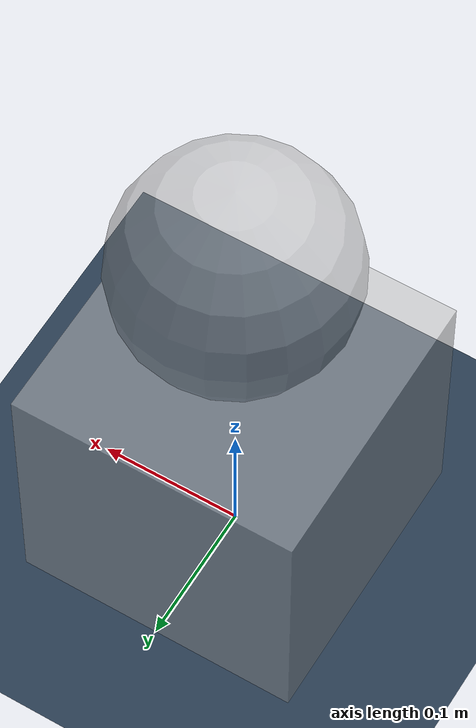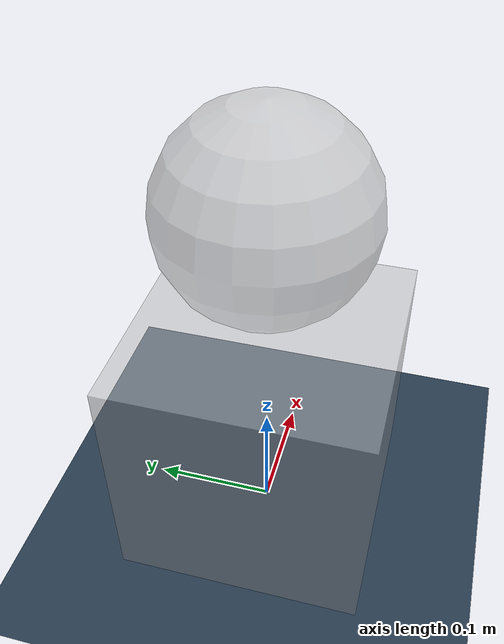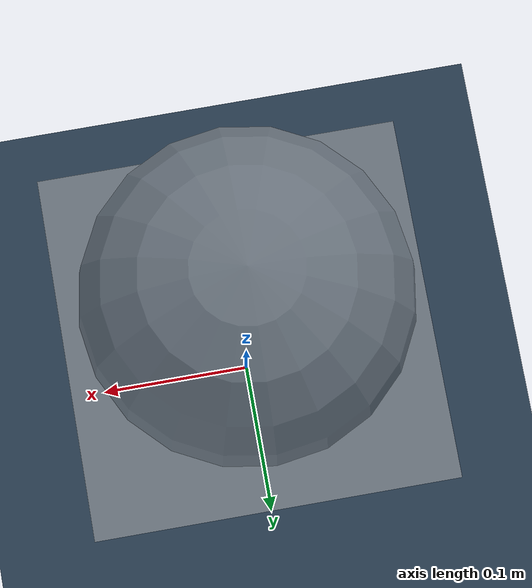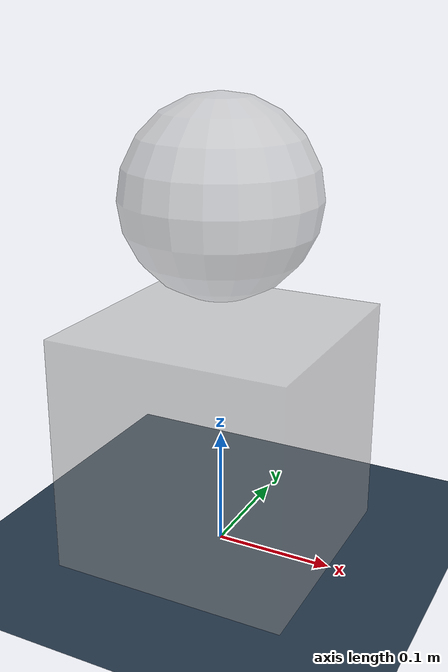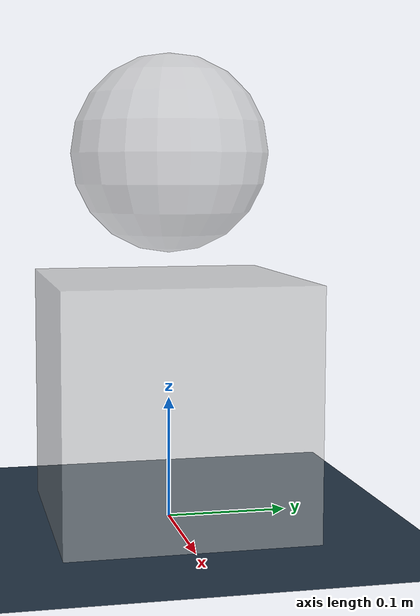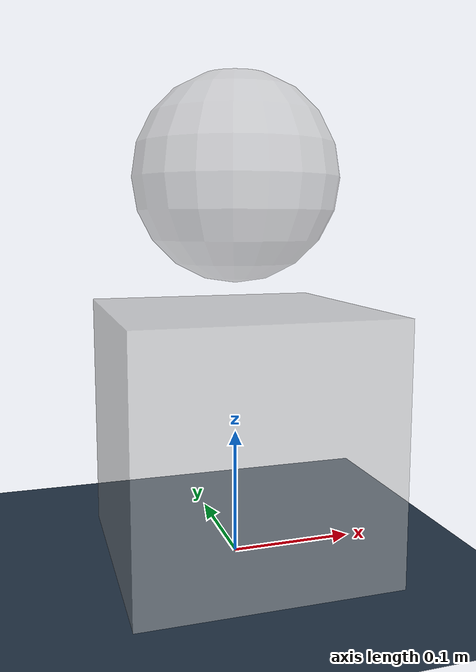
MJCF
<mujoco model="sphere_on_box">
  <compiler meshdir="asset" texturedir="asset"/>
  <statistic extent="1.5" meansize=".05"/>
  <option timestep="0.001" jacobian="sparse" gravity="0 0 -9.81"/>
  <size nconmax="3000" njmax="4000"/>
  <visual>
    <rgba haze="0.15 0.25 0.35 1"/>
    <quality shadowsize="4096"/>
    <map stiffness="700" shadowscale="0.5" fogstart="10" fogend="15" zfar="40" haze="0.3"/>
    <scale forcewidth="0.001" />
  </visual>

  <asset>
    <texture type="skybox" builtin="gradient" rgb1="0.3 0.5 0.7" rgb2="0 0 0" width="512" height="512"/>
    <texture name="texplane" type="2d" builtin="checker" rgb1=".2 .3 .4" rgb2=".1 0.15 0.2"
      width="512" height="512" mark="cross" markrgb=".8 .8 .8"/>
    <material name="matplane" reflectance="0.3" texture="texplane" texrepeat="1 1" texuniform="true"/>
  </asset>

  <custom>
    <!-- All custom parameters related to contact surfaces have the prefix cs:: -->
    <text name="cs::HydroelasticContactRepresentation" data="kTriangle"/>
    <numeric name="cs::VisualizeSurfaces" data="1"/>
    <numeric name="cs::box0" data="0 1.0 0.1 0.3 0.3"/>
    <numeric name="cs::sphere0" data="3e4 3.0 0.015 0.00 0.00"/>
  </custom>

  <worldbody>
    <light directional="true" diffuse=".4 .4 .4" specular="0.1 0.1 0.1" pos="0 0 5.0" dir="0 0 -1" castshadow="false"/>
    <light directional="true" diffuse=".6 .6 .6" specular="0.2 0.2 0.2" pos="0 0 4" dir="0 0 -1"/>
    <geom name="ground" type="plane" size="0 0 1" pos="0 0 0" quat="1 0 0 0" material="matplane" condim="1"/>
    <body name="body_box0" pos="0 0 0.1">
      <freejoint/>
      <geom name="box0" type="box"  size="0.1 0.1 0.1" rgba="0.7 0.7 0.7 0.5"/>
    </body>
    <body name="body_sphere0" pos="0 0.0 0.3" >
      <freejoint/>
      <geom name="sphere0" type="sphere" size="0.08" rgba="0.7 0.7 0.7 0.5"/>
    </body>
  </worldbody>
</mujoco>
